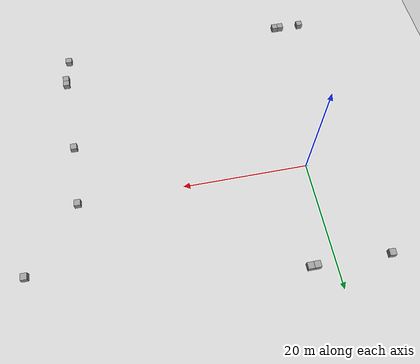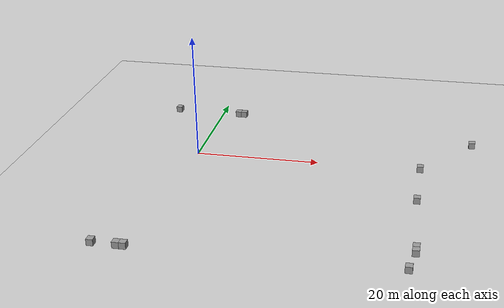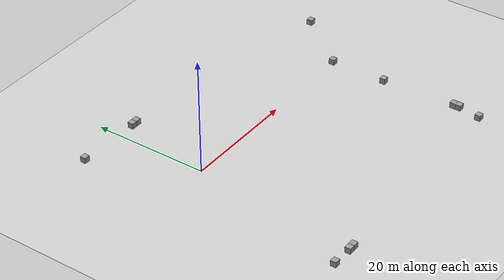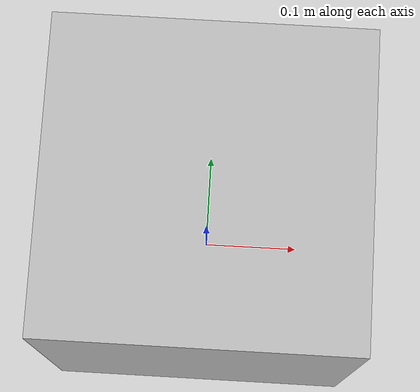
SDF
<sdf version="1.5">
 <world name="default">
  <light name="sun" type="directional">
   <pose>0 0 10 0 -0 0</pose>
   <diffuse>0.8 0.8 0.8 1</diffuse>
   <specular>0.2 0.2 0.2 1</specular>
   <attenuation>
    <range>1000</range>
    <constant>0.9</constant>
    <linear>0.01</linear>
    <quadratic>0.001</quadratic>
   </attenuation>
   <direction>-0.5 0.1 -0.9</direction>
  </light>
  <model name="ground_plane">
   <static>1</static>
   <link name="link">
    <collision name="collision">
     <geometry><plane><normal>0 0 1</normal><size>100 100</size></plane></geometry>
     <surface><friction><ode><mu>100</mu><mu2>50</mu2></ode></friction></surface>
    </collision>
    <visual name="visual">
     <cast_shadows>0</cast_shadows>
     <geometry><plane><normal>0 0 1</normal><size>100 100</size></plane></geometry>
     <material>
      <script><uri>file://media/materials/scripts/gazebo.material</uri><name>Gazebo/Grey</name></script>
     </material>
    </visual>
   </link>
  </model>
  <physics name="default_physics" default="0" type="ode">
   <max_step_size>0.001</max_step_size>
   <real_time_factor>1</real_time_factor>
   <real_time_update_rate>1000</real_time_update_rate>
   <gravity>0 0 -9.8</gravity>
   <magnetic_field>5.5645e-06 2.28758e-05 -4.23884e-05</magnetic_field>
  </physics>
  <scene><ambient>0.4 0.4 0.4 1</ambient><background>0.7 0.7 0.7 1</background><shadows>1</shadows></scene>
  <spherical_coordinates>
   <surface_model>EARTH_WGS84</surface_model>
   <latitude_deg>0</latitude_deg>
   <longitude_deg>0</longitude_deg>
   <elevation>0</elevation>
   <heading_deg>0</heading_deg>
  </spherical_coordinates>
  <model name="unit_box_1">
   <pose>44.5718 10 0.5 0 -0 0</pose>
   <link name="link">
    <inertial>
     <mass>1</mass>
     <inertia>
      <ixx>0.166667</ixx>
      <ixy>0</ixy>
      <ixz>0</ixz>
      <iyy>0.166667</iyy>
      <iyz>0</iyz>
      <izz>0.166667</izz>
     </inertia>
    </inertial>
    <collision name="collision"><geometry><box><size>1 1 1</size></box></geometry></collision>
    <visual name="visual">
     <geometry><box><size>1 1 1</size></box></geometry>
     <material>
      <script><name>Gazebo/Grey</name><uri>file://media/materials/scripts/gazebo.material</uri></script>
     </material>
    </visual>
   </link>
  </model>
  <model name="unit_box_2">
   <pose>4 16 0.5 0 -0 0</pose>
   <link name="link">
    <inertial>
     <mass>1</mass>
     <inertia>
      <ixx>0.166667</ixx>
      <ixy>0</ixy>
      <ixz>0</ixz>
      <iyy>0.166667</iyy>
      <iyz>0</iyz>
      <izz>0.166667</izz>
     </inertia>
    </inertial>
    <collision name="collision"><geometry><box><size>1 1 1</size></box></geometry></collision>
    <visual name="visual">
     <geometry><box><size>1 1 1</size></box></geometry>
     <material>
      <script><name>Gazebo/Grey</name><uri>file://media/materials/scripts/gazebo.material</uri></script>
     </material>
    </visual>
   </link>
  </model>
  <model name="unit_box_3">
   <pose>3 16 0.5 0 -0 0</pose>
   <link name="link">
    <inertial>
     <mass>1</mass>
     <inertia>
      <ixx>0.166667</ixx>
      <ixy>0</ixy>
      <ixz>0</ixz>
      <iyy>0.166667</iyy>
      <iyz>0</iyz>
      <izz>0.166667</izz>
     </inertia>
    </inertial>
    <collision name="collision"><geometry><box><size>1 1 1</size></box></geometry></collision>
    <visual name="visual">
     <geometry><box><size>1 1 1</size></box></geometry>
     <material>
      <script><name>Gazebo/Grey</name><uri>file://media/materials/scripts/gazebo.material</uri></script>
     </material>
    </visual>
   </link>
  </model>
  <model name="unit_box_4">
   <pose>-2 -29 0.5 0 -0 0</pose>
   <link name="link">
    <inertial>
     <mass>1</mass>
     <inertia>
      <ixx>0.166667</ixx>
      <ixy>0</ixy>
      <ixz>0</ixz>
      <iyy>0.166667</iyy>
      <iyz>0</iyz>
      <izz>0.166667</izz>
     </inertia>
    </inertial>
    <collision name="collision"><geometry><box><size>1 1 1</size></box></geometry></collision>
    <visual name="visual">
     <geometry><box><size>1 1 1</size></box></geometry>
     <material>
      <script><name>Gazebo/Grey</name><uri>file://media/materials/scripts/gazebo.material</uri></script>
     </material>
    </visual>
   </link>
  </model>
  <model name="unit_box_5">
   <pose>-3 -29 0.5 0 -0 0</pose>
   <link name="link">
    <inertial>
     <mass>1</mass>
     <inertia>
      <ixx>0.166667</ixx>
      <ixy>0</ixy>
      <ixz>0</ixz>
      <iyy>0.166667</iyy>
      <iyz>0</iyz>
      <izz>0.166667</izz>
     </inertia>
    </inertial>
    <collision name="collision"><geometry><box><size>1 1 1</size></box></geometry></collision>
    <visual name="visual">
     <geometry><box><size>1 1 1</size></box></geometry>
     <material>
      <script><name>Gazebo/Grey</name><uri>file://media/materials/scripts/gazebo.material</uri></script>
     </material>
    </visual>
   </link>
  </model>
  <model name="unit_box_6">
   <pose>37 -24 0.499995 1.61559e-27 -1e-05 1e-06</pose>
   <link name="link">
    <inertial>
     <mass>1</mass>
     <inertia>
      <ixx>0.166667</ixx>
      <ixy>0</ixy>
      <ixz>0</ixz>
      <iyy>0.166667</iyy>
      <iyz>0</iyz>
      <izz>0.166667</izz>
     </inertia>
    </inertial>
    <collision name="collision"><geometry><box><size>1 1 1</size></box></geometry></collision>
    <visual name="visual">
     <geometry><box><size>1 1 1</size></box></geometry>
     <material>
      <script><name>Gazebo/Grey</name><uri>file://media/materials/scripts/gazebo.material</uri></script>
     </material>
    </visual>
   </link>
  </model>
  <model name="unit_box_7">
   <pose>36.4417 0 0.5 0 -0 0</pose>
   <link name="link">
    <inertial>
     <mass>1</mass>
     <inertia>
      <ixx>0.166667</ixx>
      <ixy>0</ixy>
      <ixz>0</ixz>
      <iyy>0.166667</iyy>
      <iyz>0</iyz>
      <izz>0.166667</izz>
     </inertia>
    </inertial>
    <collision name="collision"><geometry><box><size>1 1 1</size></box></geometry></collision>
    <visual name="visual">
     <geometry><box><size>1 1 1</size></box></geometry>
     <material>
      <script><name>Gazebo/Grey</name><uri>file://media/materials/scripts/gazebo.material</uri></script>
     </material>
    </visual>
   </link>
  </model>
  <model name="unit_box_8">
   <pose>36.4379 -9.99999 0.499991 -2e-06 -1e-06 3e-06</pose>
   <link name="link">
    <inertial>
     <mass>1</mass>
     <inertia>
      <ixx>0.166667</ixx>
      <ixy>0</ixy>
      <ixz>0</ixz>
      <iyy>0.166667</iyy>
      <iyz>0</iyz>
      <izz>0.166667</izz>
     </inertia>
    </inertial>
    <collision name="collision"><geometry><box><size>1 1 1</size></box></geometry></collision>
    <visual name="visual">
     <geometry><box><size>1 1 1</size></box></geometry>
     <material>
      <script><name>Gazebo/Grey</name><uri>file://media/materials/scripts/gazebo.material</uri></script>
     </material>
    </visual>
   </link>
  </model>
  <model name="unit_box_9">
   <pose>37 -23 0.499995 0 -1e-05 0</pose>
   <link name="link">
    <inertial>
     <mass>1</mass>
     <inertia>
      <ixx>0.166667</ixx>
      <ixy>0</ixy>
      <ixz>0</ixz>
      <iyy>0.166667</iyy>
      <iyz>0</iyz>
      <izz>0.166667</izz>
     </inertia>
    </inertial>
    <collision name="collision"><geometry><box><size>1 1 1</size></box></geometry></collision>
    <visual name="visual">
     <geometry><box><size>1 1 1</size></box></geometry>
     <material>
      <script><name>Gazebo/Grey</name><uri>file://media/materials/scripts/gazebo.material</uri></script>
     </material>
    </visual>
   </link>
  </model>
  <model name="unit_box_10">
   <pose>36.3171 -27.9944 0.499995 0 1e-05 -0.03272</pose>
   <link name="link">
    <inertial>
     <mass>1</mass>
     <inertia>
      <ixx>0.166667</ixx>
      <ixy>0</ixy>
      <ixz>0</ixz>
      <iyy>0.166667</iyy>
      <iyz>0</iyz>
      <izz>0.166667</izz>
     </inertia>
    </inertial>
    <collision name="collision"><geometry><box><size>1 1 1</size></box></geometry></collision>
    <visual name="visual">
     <geometry><box><size>1 1 1</size></box></geometry>
     <material>
      <script><name>Gazebo/Grey</name><uri>file://media/materials/scripts/gazebo.material</uri></script>
     </material>
    </visual>
   </link>
  </model>
  <model name="unit_box_12">
   <pose>-6.6741 -28.9522 0.5 0 -0 0.004922</pose>
   <link name="link">
    <inertial>
     <mass>1</mass>
     <inertia>
      <ixx>0.166667</ixx>
      <ixy>0</ixy>
      <ixz>0</ixz>
      <iyy>0.166667</iyy>
      <iyz>0</iyz>
      <izz>0.166667</izz>
     </inertia>
    </inertial>
    <collision name="collision"><geometry><box><size>1 1 1</size></box></geometry></collision>
    <visual name="visual">
     <geometry><box><size>1 1 1</size></box></geometry>
     <material>
      <script><name>Gazebo/Grey</name><uri>file://media/materials/scripts/gazebo.material</uri></script>
     </material>
    </visual>
   </link>
  </model>
  <model name="unit_box_13">
   <pose>-8.23478 16.2847 0.5 -0 -0 -0.059553</pose>
   <link name="link">
    <inertial>
     <mass>1</mass>
     <inertia>
      <ixx>0.166667</ixx>
      <ixy>0</ixy>
      <ixz>0</ixz>
      <iyy>0.166667</iyy>
      <iyz>0</iyz>
      <izz>0.166667</izz>
     </inertia>
    </inertial>
    <collision name="collision"><geometry><box><size>1 1 1</size></box></geometry></collision>
    <visual name="visual">
     <geometry><box><size>1 1 1</size></box></geometry>
     <material>
      <script><name>Gazebo/Grey</name><uri>file://media/materials/scripts/gazebo.material</uri></script>
     </material>
    </visual>
   </link>
  </model>
  <model name="cock1">
   <link name="cock-link">
    <pose>0 0 0.15 0 -0 0</pose>
    <gravity>0</gravity>
    <inertial>
     <inertia><ixx>1</ixx><ixy>0</ixy><ixz>0</ixz><iyy>1</iyy><iyz>0</iyz><izz>1</izz></inertia>
     <mass>1</mass>
    </inertial>
    <visual name="cock-visual"><geometry><box><size>0.3 0.3 0.3</size></box></geometry></visual>
   </link>
   <link name="front_sonar_link">
    <gravity>0</gravity>
    <frame name="cock-link"/>
    <sensor name="cock_ray_left" type="ray">
     <always_on>1</always_on>
     <update_rate>16.1</update_rate>
     <pose>0 0 0.3 3.14159 1.44159 -0.641593</pose>
     <visualize>0</visualize>
     <ray>
      <scan>
       <horizontal>
        <samples>20</samples>
        <resolution>0.1</resolution>
        <min_angle>-7.5</min_angle>
        <max_angle>7.5</max_angle>
       </horizontal>
       <vertical>
        <samples>10</samples>
        <resolution>0.1</resolution>
        <min_angle>-7.5</min_angle>
        <max_angle>7.5</max_angle>
       </vertical>
      </scan>
      <range><min>0.2</min><max>7.5</max><resolution>0.01</resolution></range>
     </ray>
     <plugin name="gazebo_ros_cock_controller" filename="libhector_gazebo_ros_sonar.so">
      <gaussianNoise>0.005</gaussianNoise>
      <topicName>sensor_msgs/Cocks_left</topicName>
      <frameId>front_sonar_link</frameId>
      <robotNamespace>/</robotNamespace>
     </plugin>
    </sensor>
    <sensor name="cock_ray_right" type="ray">
     <always_on>1</always_on>
     <update_rate>16.1</update_rate>
     <pose>0 0 0.3 3.14159 1.44159 0.641593</pose>
     <visualize>0</visualize>
     <ray>
      <scan>
       <horizontal>
        <samples>20</samples>
        <resolution>0.1</resolution>
        <min_angle>-7.5</min_angle>
        <max_angle>7.5</max_angle>
       </horizontal>
       <vertical>
        <samples>10</samples>
        <resolution>0.1</resolution>
        <min_angle>-7.5</min_angle>
        <max_angle>7.5</max_angle>
       </vertical>
      </scan>
      <range><min>0.2</min><max>7.5</max><resolution>0.01</resolution></range>
     </ray>
     <plugin name="gazebo_ros_cock_controller" filename="libhector_gazebo_ros_sonar.so">
      <gaussianNoise>0.005</gaussianNoise>
      <topicName>sensor_msgs/Cocks_right</topicName>
      <frameId>front_sonar_link</frameId>
      <robotNamespace>/</robotNamespace>
     </plugin>
    </sensor>
    <sensor name="cock_ray_center" type="ray">
     <always_on>1</always_on>
     <update_rate>16.1</update_rate>
     <pose>0 0 0.3 3.14159 1.44159 -0.00159265</pose>
     <visualize>0</visualize>
     <ray>
      <scan>
       <horizontal>
        <samples>20</samples>
        <resolution>0.1</resolution>
        <min_angle>-7.5</min_angle>
        <max_angle>7.5</max_angle>
       </horizontal>
       <vertical>
        <samples>10</samples>
        <resolution>0.1</resolution>
        <min_angle>-7.5</min_angle>
        <max_angle>7.5</max_angle>
       </vertical>
      </scan>
      <range><min>0.2</min><max>7.5</max><resolution>0.01</resolution></range>
     </ray>
     <plugin name="gazebo_ros_cock_controller" filename="libhector_gazebo_ros_sonar.so">
      <gaussianNoise>0.005</gaussianNoise>
      <topicName>sensor_msgs/Cocks_center</topicName>
      <frameId>front_sonar_link</frameId>
      <robotNamespace>/</robotNamespace>
     </plugin>
    </sensor>
    <visual name="front_sonar_visual"><geometry><box><size>0.05 0.05 0.05</size></box></geometry></visual>
    <inertial>
     <inertia><ixx>1</ixx><ixy>0</ixy><ixz>0</ixz><iyy>1</iyy><iyz>0</iyz><izz>1</izz></inertia>
     <mass>1</mass>
    </inertial>
   </link>
   <plugin name="model_push" filename="libmodel_push.so"><robotNamespace>/</robotNamespace></plugin>
  </model>
 </world>
</sdf>
